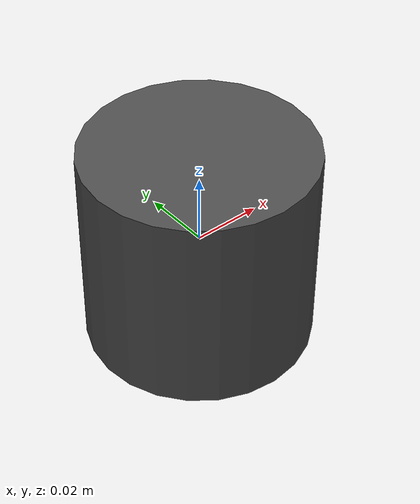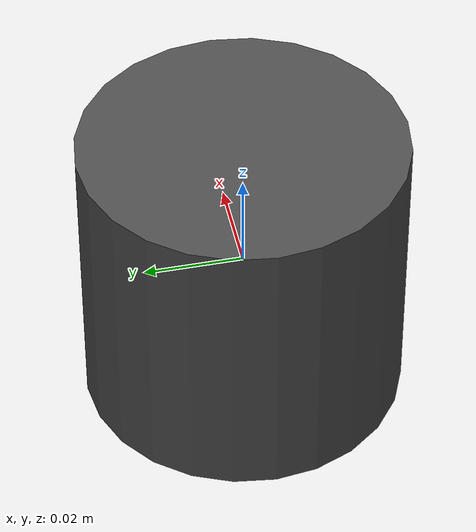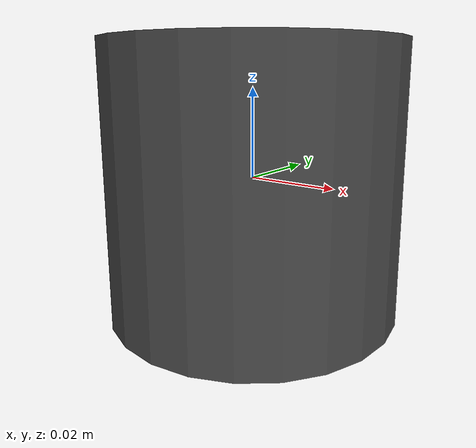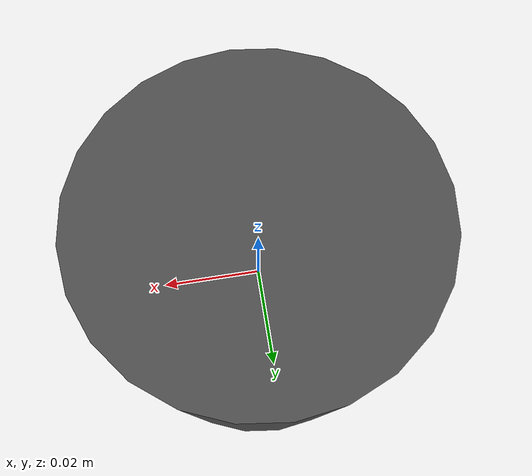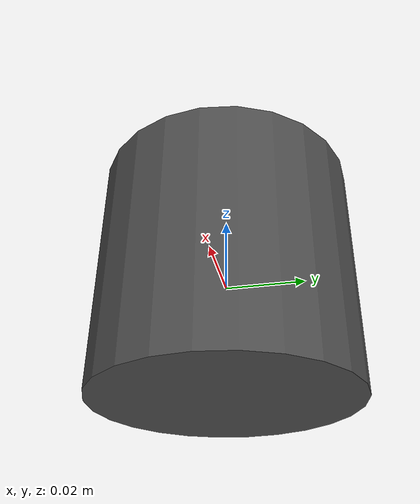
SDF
<sdf version="1.6">
  <model name="livox_mid360_sim">
    <link name="livox_base">
      <pose>0 0 0 0 0 0</pose>
      <inertial>
        <mass>0.2</mass>
        <inertia>
          <ixx>0.02</ixx><ixy>0</ixy><ixz>0</ixz>
          <iyy>0.02</iyy><iyz>0</iyz><izz>0.02</izz>
        </inertia>
      </inertial>
      <collision name="livox_base_collision">
        <geometry>
          <cylinder>
            <radius>0.0325</radius>
            <length>0.060</length>
          </cylinder>
        </geometry>
      </collision>
      <visual name="livox_base_visual">
        <geometry>
          <cylinder>
            <radius>0.0325</radius>
            <length>0.060</length>
          </cylinder>
        </geometry>
        <material>
          <script>
            <name>Gazebo/DarkGrey</name>
            <uri>file://media/materials/scripts/gazebo.material</uri>
          </script>
        </material>
      </visual>
      <gravity>true</gravity>
      <sensor name="laser_livox" type="ray">
        <always_on>true</always_on>
        <visualize>true</visualize>
        <update_rate>10</update_rate>
        <plugin name="gazebo_ros_laser_controller" filename="liblivox_laser_simulation.so">
          <ray>
            <scan>
              <horizontal>
                <samples>100</samples><resolution>1</resolution>
                <min_angle>0</min_angle><max_angle>6.28318</max_angle>
              </horizontal>
              <vertical>
                <samples>360</samples><resolution>1</resolution>
                <min_angle>-0.12601265444</min_angle><max_angle>0.96377075444</max_angle>
              </vertical>
            </scan>
            <range>
              <min>0.1</min><max>200.0</max><resolution>0.002</resolution>
            </range>
            <noise>
              <type>gaussian</type><mean>0.0</mean><stddev>0.01</stddev>
            </noise>
          </ray>
          <visualize>true</visualize>
          <samples>24000</samples>
          <downsample>1</downsample>
          <csv_file_name>package://simulation_bridges/scan_mode/mid360.csv</csv_file_name>
          <ros_topic>scan</ros_topic>
        </plugin>
      </sensor>
    </link>
  </model>
</sdf>
